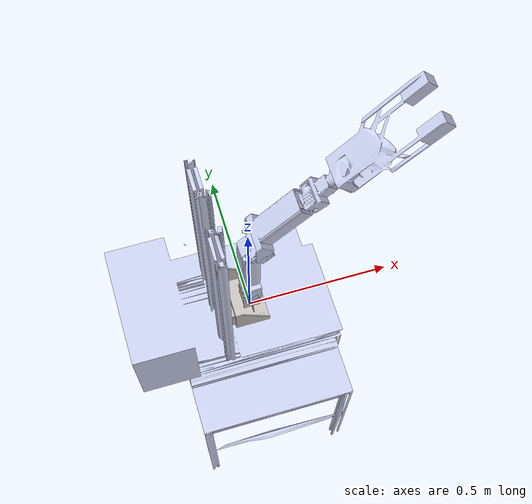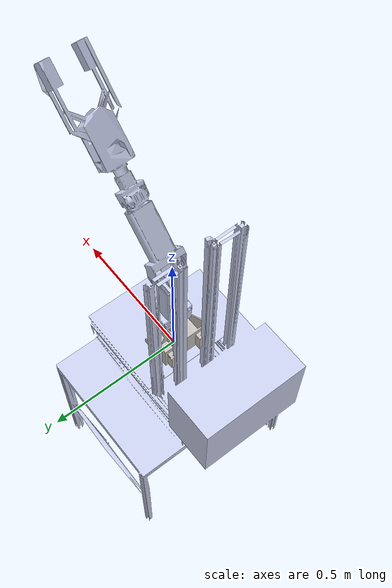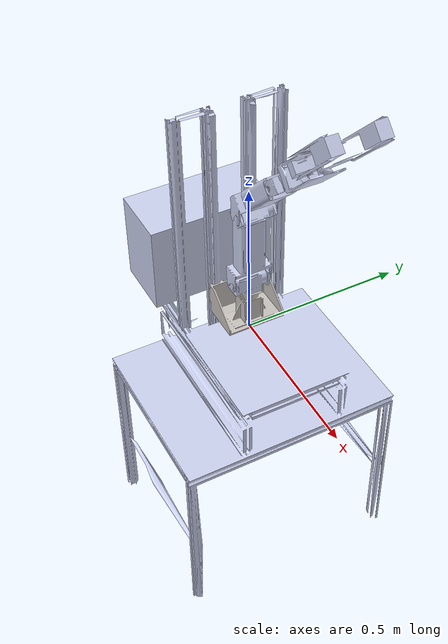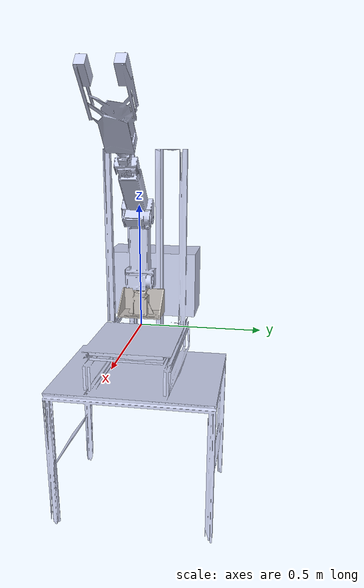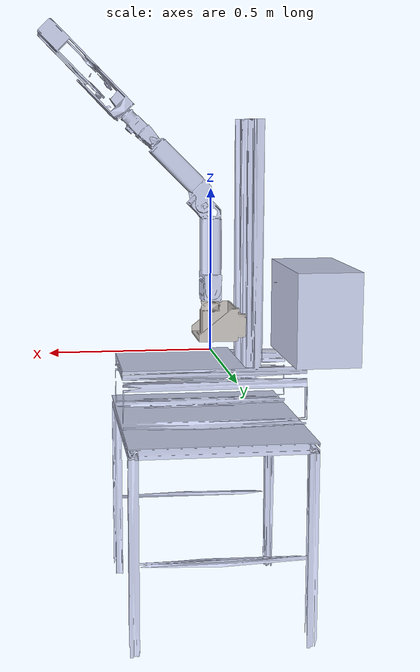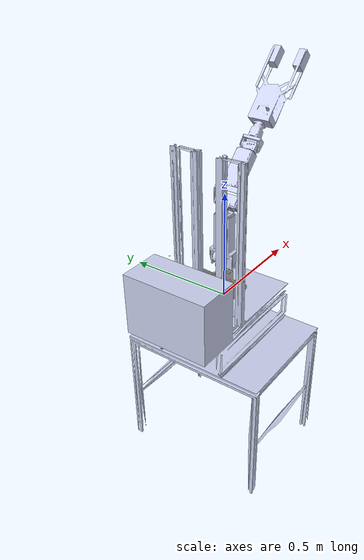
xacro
<?xml version="1.0" encoding="utf-8"?>
<robot
  name="Manipulator_station_urdf_2">
  <link
    name="Base_link">
    <inertial>
      <origin
        xyz="-0.0723308343849347 -5.76034482321908E-07 -0.138936926425514"
        rpy="0 0 0" />
      <mass
        value="10.0719247157871" />
      <inertia
        ixx="0.225372672640189"
        ixy="-5.47722770076954E-09"
        ixz="6.39304001370768E-06"
        iyy="0.215329726186438"
        iyz="-1.29340124552014E-07"
        izz="0.191427829854737" />
    </inertial>
    <visual>
      <origin
        xyz="0 0 0"
        rpy="0 0 0" />
      <geometry>
        <mesh
          filename="file://$(find mani_p_description)/meshes/table_visual.STL" />
      </geometry>
      <material
        name="">
        <color
          rgba="0.792156862745098 0.819607843137255 0.933333333333333 1" />
      </material>
    </visual>
    <collision>
      <origin
        xyz="0 0 0"
        rpy="0 0 0" />
      <geometry>
        <mesh
          filename="file://$(find mani_p_description)/meshes/table_collision.STL" />
      </geometry>
    </collision>
  </link>
  <link
    name="Base_arm">
    <inertial>
      <origin
        xyz="-0.0413175046626831 -0.0208972801523338 0.0320669876730205"
        rpy="0 0 0" />
      <mass
        value="4.1228447557393" />
      <inertia
        ixx="0.0113726436801867"
        ixy="-0.000168232670470485"
        ixz="0.00126187574890212"
        iyy="0.00575937558728693"
        iyz="0.000203632637247424"
        izz="0.01188198101123" />
    </inertial>
    <visual>
      <origin
        xyz="0 0 0"
        rpy="0 0 0" />
      <geometry>
        <mesh
          filename="file://$(find mani_p_description)/meshes/Base_arm_visual.stl" />
      </geometry>
      <material
        name="">
        <color
          rgba="0.776470588235294 0.756862745098039 0.737254901960784 1" />
      </material>
    </visual>
    <collision>
      <origin
        xyz="0 0 0"
        rpy="0 0 0" />
      <geometry>
        <mesh
          filename="file://$(find mani_p_description)/meshes/base_collision.STL" />
      </geometry>
    </collision>
  </link>
  <joint
    name="Base_arm_J0"
    type="fixed">
    <origin
      xyz="0 0 0.04"
      rpy="0 0 0" />
    <parent
      link="Base_link" />
    <child
      link="Base_arm" />
    <axis
      xyz="0 0 -1" />
    <limit
      lower="-0.7"
      upper="0"
      effort="200"
      velocity="3" />
  </joint>
  <link
    name="L1">
    <inertial>
      <origin
        xyz="-1.10021436405816E-11 7.32518596352344E-05 0.0316911255153076"
        rpy="0 0 0" />
      <mass
        value="0.29717061581658" />
      <inertia
        ixx="0.000303886041407238"
        ixy="6.99241113621864E-15"
        ixz="4.48809908102748E-15"
        iyy="0.000133630920461156"
        iyz="3.51430414313121E-06"
        izz="0.000309461173077348" />
    </inertial>
    <visual>
      <origin
        xyz="0 0 0"
        rpy="0 0 0" />
      <geometry>
        <mesh
          filename="file://$(find mani_p_description)/meshes/L1_visual.stl" />
      </geometry>
      <material
        name="">
        <color
          rgba="0.792156862745098 0.819607843137255 0.933333333333333 1" />
      </material>
    </visual>
    <collision>
      <origin
        xyz="0 0 0"
        rpy="0 0 0" />
      <geometry>
        <mesh
          filename="file://$(find mani_p_description)/meshes/L1.STL" />
      </geometry>
    </collision>
  </link>
  <joint
    name="J1"
    type="revolute">
    <origin
      xyz="0 0 0.116000000000001"
      rpy="0 0 3.14159265358979" />
    <parent
      link="Base_arm" />
    <child
      link="L1" />
    <axis
      xyz="0 0 -1" />
    <limit
      lower="-1.57"
      upper="1.57"
      effort="200"
      velocity="3" />
  </joint>
  <link
    name="L2">
    <inertial>
      <origin
        xyz="0.20185150893891 0.0161645619972203 -7.55770843141323E-05"
        rpy="0 0 0" />
      <mass
        value="0.524148568163614" />
      <inertia
        ixx="0.000499774464110963"
        ixy="3.40054540308558E-06"
        ixz="-2.50463813782652E-06"
        iyy="0.000697225471781578"
        iyz="-2.48498255392067E-06"
        izz="0.000526429291456387" />
    </inertial>
    <visual>
      <origin
        xyz="0 0 0"
        rpy="0 0 0" />
      <geometry>
        <mesh
          filename="file://$(find mani_p_description)/meshes/L2_visual.stl" />
      </geometry>
      <material
        name="">
        <color
          rgba="0.792156862745098 0.819607843137255 0.933333333333333 1" />
      </material>
    </visual>
    <collision>
      <origin
        xyz="0 0 0"
        rpy="0 0 0" />
      <geometry>
        <mesh
          filename="file://$(find mani_p_description)/meshes/L2.STL" />
      </geometry>
    </collision>
  </link>
  <joint
    name="J2"
    type="revolute">
    <origin
      xyz="0 0 0.0330000000008923"
      rpy="1.5707963267949 -1.5707963267949 0" />
    <parent
      link="L1" />
    <child
      link="L2" />
    <axis
      xyz="0 0 -1" />
    <limit
      lower="-1.57"
      upper="1.57"
      effort="200"
      velocity="3" />
  </joint>
  <link
    name="L3">
    <inertial>
      <origin
        xyz="0.126152886971805 -0.0298818698825802 -0.000208214870130147"
        rpy="0 0 0" />
      <mass
        value="0.481103074710301" />
      <inertia
        ixx="0.000303413270297186"
        ixy="4.74930894283668E-06"
        ixz="4.09553375298929E-08"
        iyy="0.000668879602866701"
        iyz="-4.78878066581936E-08"
        izz="0.000667938888460889" />
    </inertial>
    <visual>
      <origin
        xyz="0 0 0"
        rpy="0 0 0" />
      <geometry>
        <mesh
          filename="file://$(find mani_p_description)/meshes/L3_visual.stl" />
      </geometry>
      <material
        name="">
        <color
          rgba="0.792156862745098 0.819607843137255 0.933333333333333 1" />
      </material>
    </visual>
    <collision>
      <origin
        xyz="0 0 0"
        rpy="0 0 0" />
      <geometry>
        <mesh
          filename="file://$(find mani_p_description)/meshes/L3.STL" />
      </geometry>
    </collision>
  </link>
  <joint
    name="J3"
    type="revolute">
    <origin
      xyz="0.264000000000014 0.0299999999999664 0"
      rpy="0 0 0.7854" />
    <parent
      link="L2" />
    <child
      link="L3" />
    <axis
      xyz="0 0 -1" />
    <limit
      lower="-2.3562"
      upper="1.57"
      effort="200"
      velocity="3" />
  </joint>
  <link
    name="L4">
    <inertial>
      <origin
        xyz="0.000100097952944411 -0.00166222902026096 -0.0538849440312941"
        rpy="0 0 0" />
      <mass
        value="0.0852756037730973" />
      <inertia
        ixx="3.19354778364782E-05"
        ixy="1.01420009491847E-06"
        ixz="2.04206635751293E-11"
        iyy="1.50843843290278E-05"
        iyz="-2.23825574257021E-11"
        izz="3.23539402730483E-05" />
    </inertial>
    <visual>
      <origin
        xyz="0 0 0"
        rpy="0 0 0" />
      <geometry>
        <mesh
          filename="file://$(find mani_p_description)/meshes/L4_visual.stl" />
      </geometry>
      <material
        name="">
        <color
          rgba="0.792156862745098 0.819607843137255 0.933333333333333 1" />
      </material>
    </visual>
    <collision>
      <origin
        xyz="0 0 0"
        rpy="0 0 0" />
      <geometry>
        <mesh
          filename="file://$(find mani_p_description)/meshes/L4.STL" />
      </geometry>
    </collision>
  </link>
  <joint
    name="J4"
    type="revolute">
    <origin
      xyz="0.294599574521192 -0.0300010233346771 0"
      rpy="1.5707963267949 0 1.5707963267949" />
    <parent
      link="L3" />
    <child
      link="L4" />
    <axis
      xyz="0 0 -1" />
    <limit
      lower="-1.57"
      upper="1.57"
      effort="200"
      velocity="3" />
  </joint>
  <link
    name="L5">
    <inertial>
      <origin
        xyz="0.0648173973448019 -0.000207323517899316 0.000713506973517346"
        rpy="0 0 0" />
      <mass
        value="0.138634418013041" />
      <inertia
        ixx="4.40601102397039E-05"
        ixy="-2.23466572762377E-07"
        ixz="1.74333782378955E-08"
        iyy="6.66828144588062E-05"
        iyz="1.71937506116129E-10"
        izz="6.22589621626479E-05" />
    </inertial>
    <visual>
      <origin
        xyz="0 0 0"
        rpy="0 0 0" />
      <geometry>
        <mesh
          filename="file://$(find mani_p_description)/meshes/L5_visual.stl" />
      </geometry>
      <material
        name="">
        <color
          rgba="0.792156862745098 0.819607843137255 0.933333333333333 1" />
      </material>
    </visual>
    <collision>
      <origin
        xyz="0 0 0"
        rpy="0 0 0" />
      <geometry>
        <mesh
          filename="file://$(find mani_p_description)/meshes/L5.STL" />
      </geometry>
    </collision>
  </link>
  <joint
    name="J5"
    type="revolute">
    <origin
      xyz="0.000180609076408655 -0.00300457659950193 -0.0491995745209299"
      rpy="1.63069405070014 -1.5707963267949 0" />
    <parent
      link="L4" />
    <child
      link="L5" />
    <axis
      xyz="0 0 -1" />
    <limit
      lower="-1.57"
      upper="1.57"
      effort="200"
      velocity="3" />
  </joint>
  <link
    name="Gripper">
    <inertial>
      <origin
        xyz="-0.00239854584595212 -0.00129454529425393 0.164957767373349"
        rpy="0 0 0" />
      <mass
        value="0.714884909554401" />
      <inertia
        ixx="0.000812741434805093"
        ixy="8.80616625652652E-07"
        ixz="2.57702333456977E-07"
        iyy="0.000696069782175367"
        iyz="2.52923825913591E-06"
        izz="0.000289658112195835" />
    </inertial>
    <visual>
      <origin
        xyz="0 0 0"
        rpy="0 0 0" />
      <geometry>
        <mesh
          filename="file://$(find mani_p_description)/meshes/Gripper_visual.stl" />
      </geometry>
      <material
        name="">
        <color
          rgba="0.792156862745098 0.819607843137255 0.933333333333333 1" />
      </material>
    </visual>
    <collision>
      <origin
        xyz="0 0 0"
        rpy="0 0 0" />
      <geometry>
        <mesh
          filename="file://$(find mani_p_description)/meshes/Gripper_collision.STL" />
      </geometry>
    </collision>
  </link>
  <joint
    name="J6"
    type="revolute">
    <origin
      xyz="0.110994586070567 0.00109629513563991 0"
      rpy="-1.5707963267949 -0.0575855851524496 -1.5609196334649" />
    <parent
      link="L5" />
    <child
      link="Gripper" />
    <axis
      xyz="0 0 -1" />
    <limit
      lower="-1.57"
      upper="1.57"
      effort="200"
      velocity="3" />
  </joint>
</robot>
